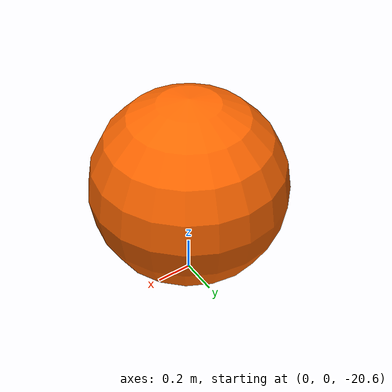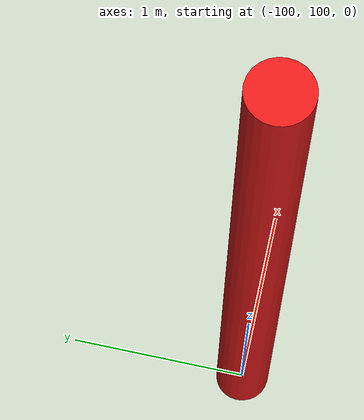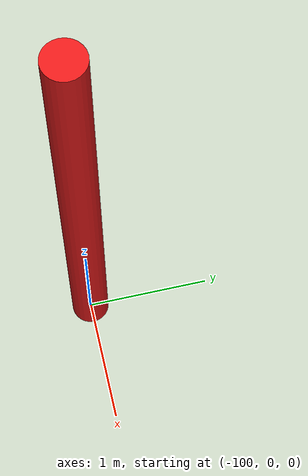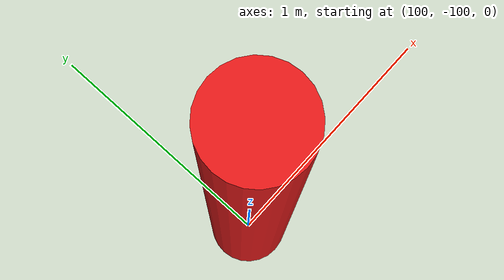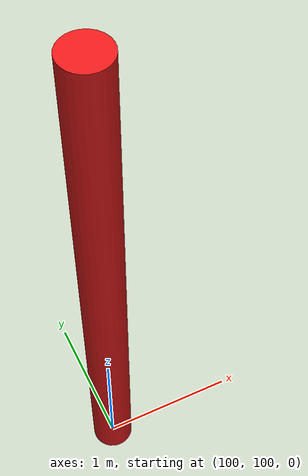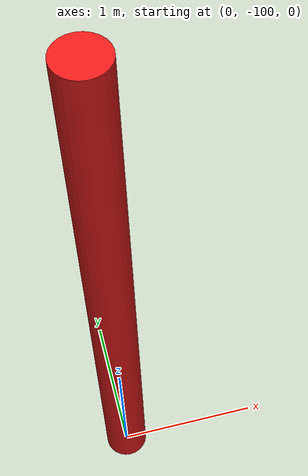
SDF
<sdf version="1.9">
 <world name="fts_field">
  <physics type="ode">
   <max_step_size>0.004</max_step_size>
   <real_time_factor>1.0</real_time_factor>
   <real_time_update_rate>250</real_time_update_rate>
  </physics>
  <plugin name="gz::sim::systems::Physics" filename="gz-sim-physics-system"/>
  <plugin name="gz::sim::systems::UserCommands" filename="gz-sim-user-commands-system"/>
  <plugin name="gz::sim::systems::SceneBroadcaster" filename="gz-sim-scene-broadcaster-system"/>
  <plugin name="gz::sim::systems::Contact" filename="gz-sim-contact-system"/>
  <plugin name="gz::sim::systems::Imu" filename="gz-sim-imu-system"/>
  <plugin name="gz::sim::systems::AirPressure" filename="gz-sim-air-pressure-system"/>
  <plugin name="gz::sim::systems::ApplyLinkWrench" filename="gz-sim-apply-link-wrench-system"/>
  <plugin name="gz::sim::systems::NavSat" filename="gz-sim-navsat-system"/>
  <plugin name="gz::sim::systems::Sensors" filename="gz-sim-sensors-system">
   <render_engine>ogre2</render_engine>
  </plugin>
  <scene><ambient>0.4 0.4 0.4 1</ambient><background>0.7 0.8 0.9 1</background><grid>false</grid></scene>
  <gravity>0 0 -9.8</gravity>
  <spherical_coordinates>
   <surface_model>EARTH_WGS84</surface_model>
   <world_frame_orientation>ENU</world_frame_orientation>
   <latitude_deg>47.397971057728974</latitude_deg>
   <longitude_deg>8.546163739800146</longitude_deg>
   <elevation>0</elevation>
  </spherical_coordinates>
  <light name="sun" type="directional">
   <pose>0 0 500 0 0 0</pose>
   <intensity>1</intensity>
   <direction>0.001 0.625 -0.78</direction>
   <diffuse>0.904 0.904 0.904 1</diffuse>
   <specular>0.271 0.271 0.271 1</specular>
  </light>
  <model name="ground_plane">
   <static>true</static>
   <link name="link">
    <collision name="collision">
     <geometry><plane><normal>0 0 1</normal><size>1 1</size></plane></geometry>
    </collision>
    <visual name="visual">
     <geometry><plane><normal>0 0 1</normal><size>400 400</size></plane></geometry>
     <material><ambient>0.45 0.6 0.35 1</ambient><diffuse>0.45 0.6 0.35 1</diffuse></material>
    </visual>
   </link>
  </model>
  <include><uri>model://fence_post</uri><name>post_ne</name><pose>100 100 0 0 0 0</pose></include>
  <include><uri>model://fence_post</uri><name>post_n</name><pose>0 100 0 0 0 0</pose></include>
  <include><uri>model://fence_post</uri><name>post_nw</name><pose>-100 100 0 0 0 0</pose></include>
  <include><uri>model://fence_post</uri><name>post_w</name><pose>-100 0 0 0 0 0</pose></include>
  <include><uri>model://fence_post</uri><name>post_sw</name><pose>-100 -100 0 0 0 0</pose></include>
  <include><uri>model://fence_post</uri><name>post_s</name><pose>0 -100 0 0 0 0</pose></include>
  <include><uri>model://fence_post</uri><name>post_se</name><pose>100 -100 0 0 0 0</pose></include>
  <include><uri>model://fence_post</uri><name>post_e</name><pose>100 0 0 0 0 0</pose></include>
  <include><uri>model://fts_canopy</uri><name>fts_canopy</name><pose>0 0 -20 0 0 0</pose></include>
 </world>
</sdf>

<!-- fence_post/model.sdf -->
<sdf version="1.9">
  <model name="fence_post">
    <static>true</static>
    <link name="link">
      <pose>0 0 2 0 0 0</pose>
      <visual name="post">
        <geometry><cylinder><radius>0.15</radius><length>4</length></cylinder></geometry>
        <material>
          <ambient>0.9 0.1 0.1 1</ambient>
          <diffuse>0.9 0.1 0.1 1</diffuse>
        </material>
      </visual>
    </link>
  </model>
</sdf>

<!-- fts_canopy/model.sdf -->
<sdf version="1.9">
  <model name="fts_canopy">
    <link name="link">
      <gravity>false</gravity>
      <inertial>
        <mass>0.1</mass>
        <inertia><ixx>0.001</ixx><ixy>0</ixy><ixz>0</ixz><iyy>0.001</iyy><iyz>0</iyz><izz>0.001</izz></inertia>
      </inertial>
      <visual name="canopy">
        <geometry><sphere><radius>0.52</radius></sphere></geometry>
        <pose>0 0 0 0 0 0</pose>
        <material>
          <ambient>1 0.4 0 1</ambient>
          <diffuse>1 0.4 0 1</diffuse>
        </material>
      </visual>
    </link>
  </model>
</sdf>
